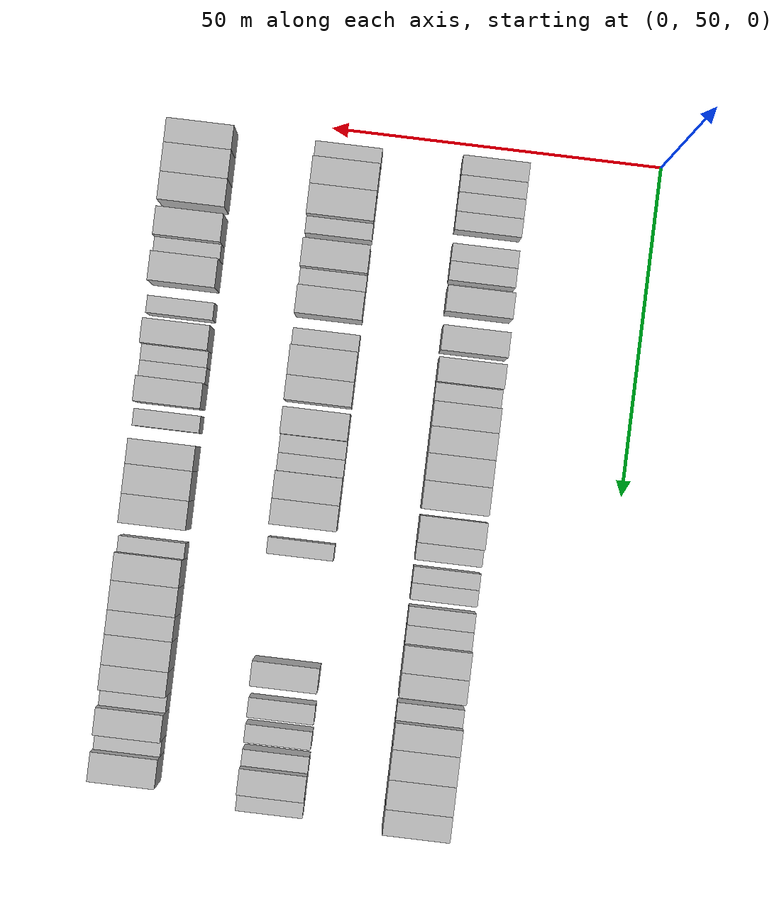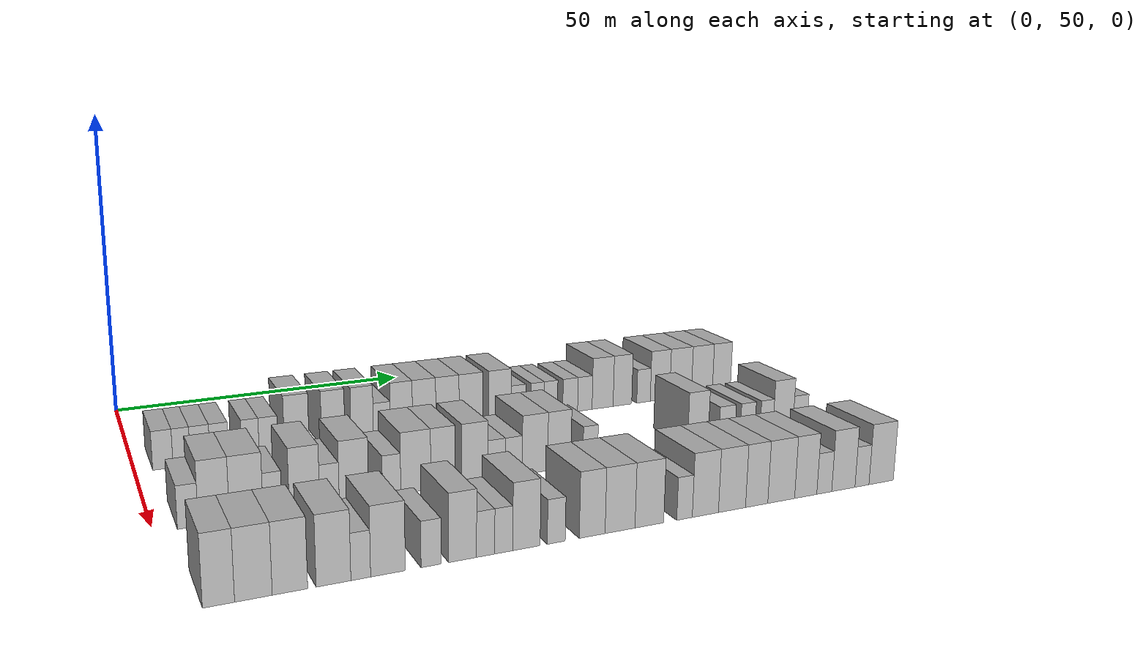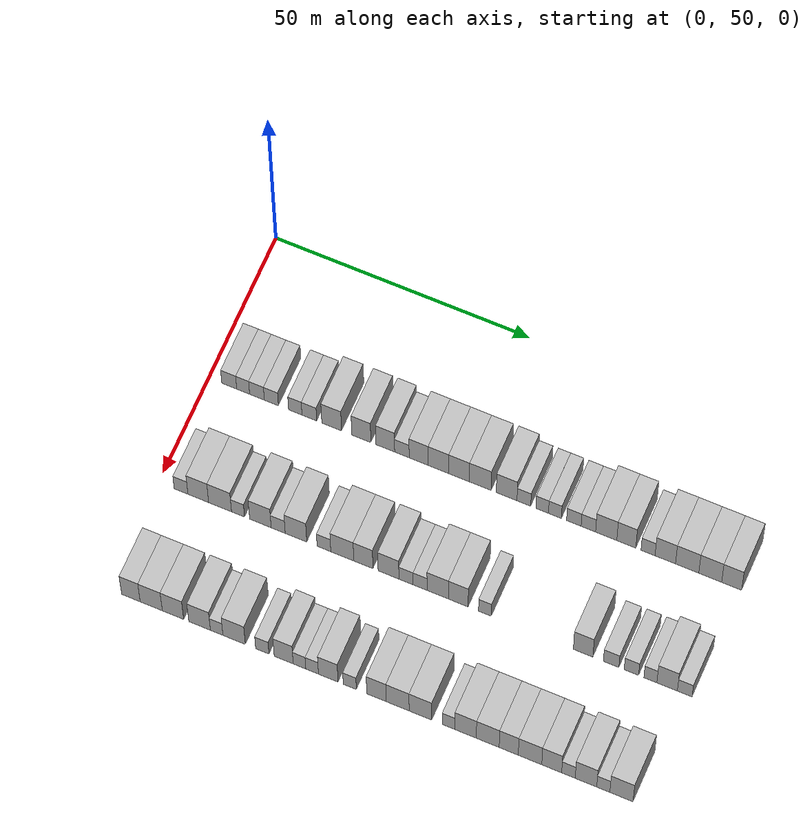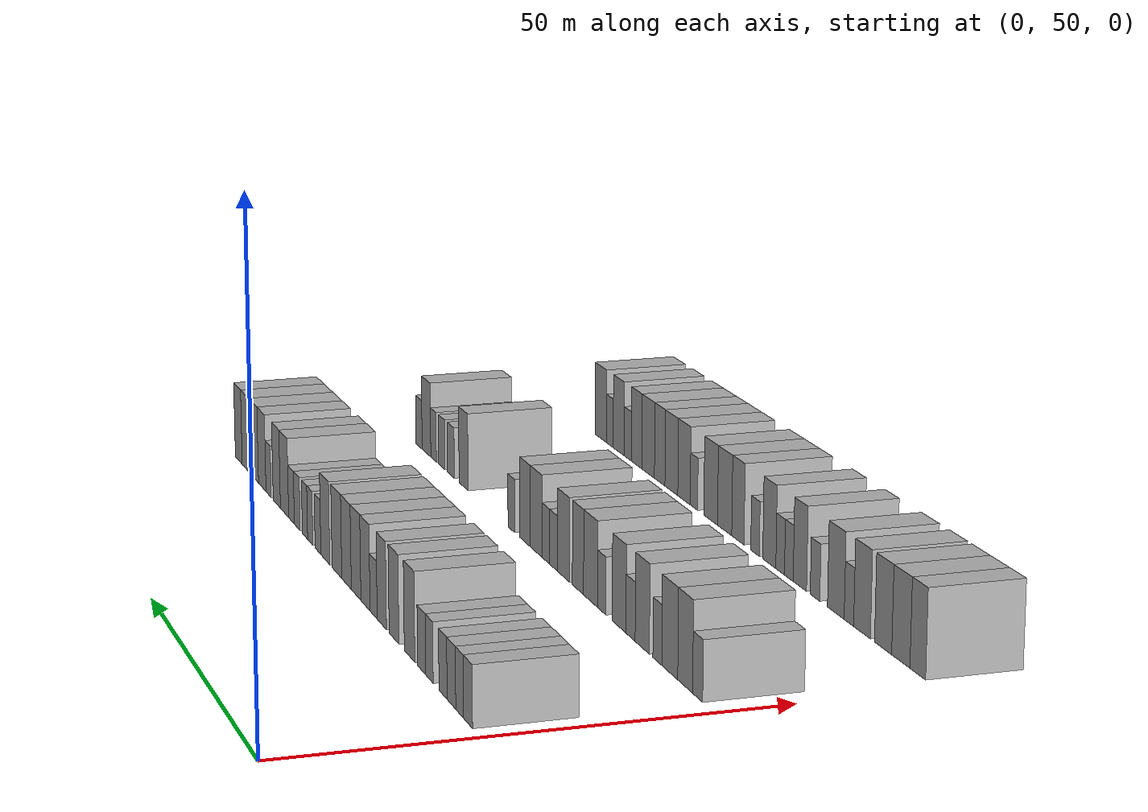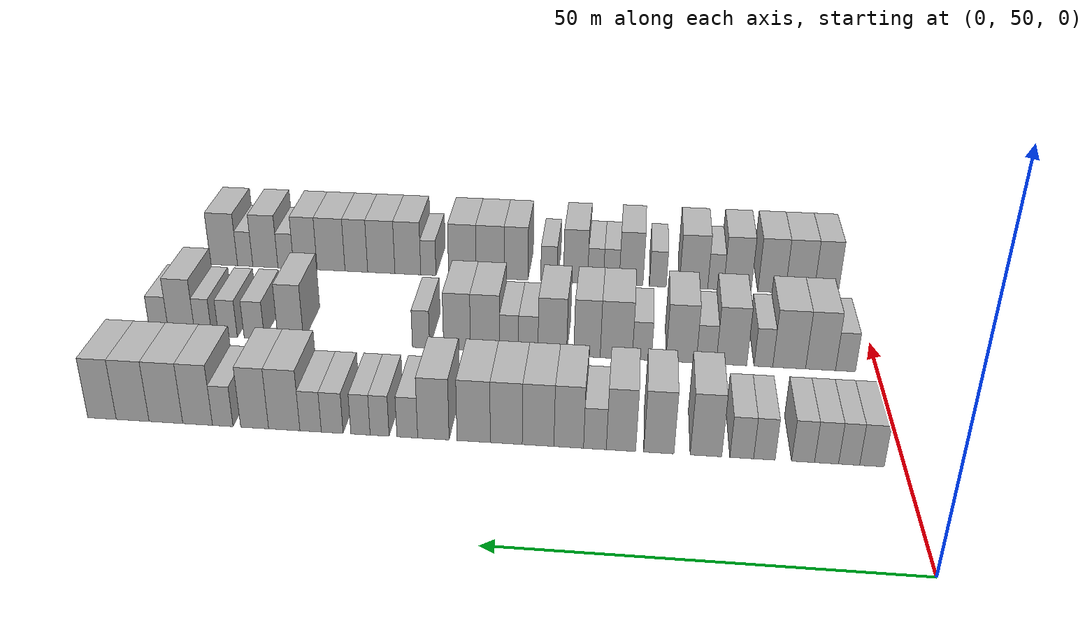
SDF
<sdf version="1.6">
 <world name="default">
  <model name="building_72">
   <static>1</static>
   <pose>25.0000 54.0068 0 0.000000 0.000000 0.000000</pose>
   <link name="link">
    <pose>0 0 3.00 0 0 0</pose>
    <collision name="collision"><geometry><box><size>10.0000 2.9437 6.0000</size></box></geometry></collision>
    <visual name="visual">
     <cast_shadows>0</cast_shadows>
     <geometry><box><size>10.0000 2.9437 6.0000</size></box></geometry>
     <material>
      <script>
       <uri>model://HANNAS_wall/materials/scripts</uri>
       <uri>model://HANNAS_wall/materials/textures</uri>
       <name>vrc/HANNAS_wall</name>
      </script>
     </material>
    </visual>
   </link>
  </model>
  <model name="building_73">
   <static>1</static>
   <pose>25.0000 56.7480 0 0.000000 0.000000 0.000000</pose>
   <link name="link">
    <pose>0 0 3.00 0 0 0</pose>
    <collision name="collision"><geometry><box><size>10.0000 2.5386 6.0000</size></box></geometry></collision>
    <visual name="visual">
     <cast_shadows>0</cast_shadows>
     <geometry><box><size>10.0000 2.5386 6.0000</size></box></geometry>
     <material>
      <script>
       <uri>model://HANNAS_wall/materials/scripts</uri>
       <uri>model://HANNAS_wall/materials/textures</uri>
       <name>vrc/HANNAS_wall</name>
      </script>
     </material>
    </visual>
   </link>
  </model>
  <model name="building_74">
   <static>1</static>
   <pose>25.0000 59.4649 0 0.000000 0.000000 0.000000</pose>
   <link name="link">
    <pose>0 0 3.00 0 0 0</pose>
    <collision name="collision"><geometry><box><size>10.0000 2.8952 6.0000</size></box></geometry></collision>
    <visual name="visual">
     <cast_shadows>0</cast_shadows>
     <geometry><box><size>10.0000 2.8952 6.0000</size></box></geometry>
     <material>
      <script>
       <uri>model://HANNAS_wall/materials/scripts</uri>
       <uri>model://HANNAS_wall/materials/textures</uri>
       <name>vrc/HANNAS_wall</name>
      </script>
     </material>
    </visual>
   </link>
  </model>
  <model name="building_75">
   <static>1</static>
   <pose>25.0000 62.2959 0 0.000000 0.000000 0.000000</pose>
   <link name="link">
    <pose>0 0 3.00 0 0 0</pose>
    <collision name="collision"><geometry><box><size>10.0000 2.7669 6.0000</size></box></geometry></collision>
    <visual name="visual">
     <cast_shadows>0</cast_shadows>
     <geometry><box><size>10.0000 2.7669 6.0000</size></box></geometry>
     <material>
      <script>
       <uri>model://HANNAS_wall/materials/scripts</uri>
       <uri>model://HANNAS_wall/materials/textures</uri>
       <name>vrc/HANNAS_wall</name>
      </script>
     </material>
    </visual>
   </link>
  </model>
  <model name="building_76">
   <static>1</static>
   <pose>25.0000 66.9899 0 0.000000 0.000000 0.000000</pose>
   <link name="link">
    <pose>0 0 3.00 0 0 0</pose>
    <collision name="collision"><geometry><box><size>10.0000 2.6211 6.0000</size></box></geometry></collision>
    <visual name="visual">
     <cast_shadows>0</cast_shadows>
     <geometry><box><size>10.0000 2.6211 6.0000</size></box></geometry>
     <material>
      <script>
       <uri>model://HANNAS_wall/materials/scripts</uri>
       <uri>model://HANNAS_wall/materials/textures</uri>
       <name>vrc/HANNAS_wall</name>
      </script>
     </material>
    </visual>
   </link>
  </model>
  <model name="building_77">
   <static>1</static>
   <pose>25.0000 69.7466 0 0.000000 0.000000 0.000000</pose>
   <link name="link">
    <pose>0 0 3.00 0 0 0</pose>
    <collision name="collision"><geometry><box><size>10.0000 2.8924 6.0000</size></box></geometry></collision>
    <visual name="visual">
     <cast_shadows>0</cast_shadows>
     <geometry><box><size>10.0000 2.8924 6.0000</size></box></geometry>
     <material>
      <script>
       <uri>model://HANNAS_wall/materials/scripts</uri>
       <uri>model://HANNAS_wall/materials/textures</uri>
       <name>vrc/HANNAS_wall</name>
      </script>
     </material>
    </visual>
   </link>
  </model>
  <model name="building_78">
   <static>1</static>
   <pose>25.0000 74.1264 0 0.000000 0.000000 0.000000</pose>
   <link name="link">
    <pose>0 0 4.50 0 0 0</pose>
    <collision name="collision"><geometry><box><size>10.0000 3.8671 9.0000</size></box></geometry></collision>
    <visual name="visual">
     <cast_shadows>0</cast_shadows>
     <geometry><box><size>10.0000 3.8671 9.0000</size></box></geometry>
     <material>
      <script>
       <uri>model://HANNAS_wall/materials/scripts</uri>
       <uri>model://HANNAS_wall/materials/textures</uri>
       <name>vrc/HANNAS_wall</name>
      </script>
     </material>
    </visual>
   </link>
  </model>
  <model name="building_79">
   <static>1</static>
   <pose>25.0000 79.9260 0 0.000000 0.000000 0.000000</pose>
   <link name="link">
    <pose>0 0 4.50 0 0 0</pose>
    <collision name="collision"><geometry><box><size>10.0000 3.7321 9.0000</size></box></geometry></collision>
    <visual name="visual">
     <cast_shadows>0</cast_shadows>
     <geometry><box><size>10.0000 3.7321 9.0000</size></box></geometry>
     <material>
      <script>
       <uri>model://HANNAS_wall/materials/scripts</uri>
       <uri>model://HANNAS_wall/materials/textures</uri>
       <name>vrc/HANNAS_wall</name>
      </script>
     </material>
    </visual>
   </link>
  </model>
  <model name="building_80">
   <static>1</static>
   <pose>25.0000 84.6136 0 0.000000 0.000000 0.000000</pose>
   <link name="link">
    <pose>0 0 4.50 0 0 0</pose>
    <collision name="collision"><geometry><box><size>10.0000 3.6432 9.0000</size></box></geometry></collision>
    <visual name="visual">
     <cast_shadows>0</cast_shadows>
     <geometry><box><size>10.0000 3.6432 9.0000</size></box></geometry>
     <material>
      <script>
       <uri>model://HANNAS_wall/materials/scripts</uri>
       <uri>model://HANNAS_wall/materials/textures</uri>
       <name>vrc/HANNAS_wall</name>
      </script>
     </material>
    </visual>
   </link>
  </model>
  <model name="building_81">
   <static>1</static>
   <pose>25.0000 87.8532 0 0.000000 0.000000 0.000000</pose>
   <link name="link">
    <pose>0 0 3.00 0 0 0</pose>
    <collision name="collision"><geometry><box><size>10.0000 2.8360 6.0000</size></box></geometry></collision>
    <visual name="visual">
     <cast_shadows>0</cast_shadows>
     <geometry><box><size>10.0000 2.8360 6.0000</size></box></geometry>
     <material>
      <script>
       <uri>model://HANNAS_wall/materials/scripts</uri>
       <uri>model://HANNAS_wall/materials/textures</uri>
       <name>vrc/HANNAS_wall</name>
      </script>
     </material>
    </visual>
   </link>
  </model>
  <model name="building_82">
   <static>1</static>
   <pose>25.0000 91.1264 0 0.000000 0.000000 0.000000</pose>
   <link name="link">
    <pose>0 0 4.50 0 0 0</pose>
    <collision name="collision"><geometry><box><size>10.0000 3.7104 9.0000</size></box></geometry></collision>
    <visual name="visual">
     <cast_shadows>0</cast_shadows>
     <geometry><box><size>10.0000 3.7104 9.0000</size></box></geometry>
     <material>
      <script>
       <uri>model://HANNAS_wall/materials/scripts</uri>
       <uri>model://HANNAS_wall/materials/textures</uri>
       <name>vrc/HANNAS_wall</name>
      </script>
     </material>
    </visual>
   </link>
  </model>
  <model name="building_83">
   <static>1</static>
   <pose>25.0000 94.9710 0 0.000000 0.000000 0.000000</pose>
   <link name="link">
    <pose>0 0 4.50 0 0 0</pose>
    <collision name="collision"><geometry><box><size>10.0000 3.9789 9.0000</size></box></geometry></collision>
    <visual name="visual">
     <cast_shadows>0</cast_shadows>
     <geometry><box><size>10.0000 3.9789 9.0000</size></box></geometry>
     <material>
      <script>
       <uri>model://HANNAS_wall/materials/scripts</uri>
       <uri>model://HANNAS_wall/materials/textures</uri>
       <name>vrc/HANNAS_wall</name>
      </script>
     </material>
    </visual>
   </link>
  </model>
  <model name="building_84">
   <static>1</static>
   <pose>25.0000 98.9792 0 0.000000 0.000000 0.000000</pose>
   <link name="link">
    <pose>0 0 4.50 0 0 0</pose>
    <collision name="collision"><geometry><box><size>10.0000 4.0376 9.0000</size></box></geometry></collision>
    <visual name="visual">
     <cast_shadows>0</cast_shadows>
     <geometry><box><size>10.0000 4.0376 9.0000</size></box></geometry>
     <material>
      <script>
       <uri>model://HANNAS_wall/materials/scripts</uri>
       <uri>model://HANNAS_wall/materials/textures</uri>
       <name>vrc/HANNAS_wall</name>
      </script>
     </material>
    </visual>
   </link>
  </model>
  <model name="building_85">
   <static>1</static>
   <pose>25.0000 103.1059 0 0.000000 0.000000 0.000000</pose>
   <link name="link">
    <pose>0 0 4.50 0 0 0</pose>
    <collision name="collision"><geometry><box><size>10.0000 4.2157 9.0000</size></box></geometry></collision>
    <visual name="visual">
     <cast_shadows>0</cast_shadows>
     <geometry><box><size>10.0000 4.2157 9.0000</size></box></geometry>
     <material>
      <script>
       <uri>model://HANNAS_wall/materials/scripts</uri>
       <uri>model://HANNAS_wall/materials/textures</uri>
       <name>vrc/HANNAS_wall</name>
      </script>
     </material>
    </visual>
   </link>
  </model>
  <model name="building_86">
   <static>1</static>
   <pose>25.0000 108.2187 0 0.000000 0.000000 0.000000</pose>
   <link name="link">
    <pose>0 0 4.50 0 0 0</pose>
    <collision name="collision"><geometry><box><size>10.0000 4.0099 9.0000</size></box></geometry></collision>
    <visual name="visual">
     <cast_shadows>0</cast_shadows>
     <geometry><box><size>10.0000 4.0099 9.0000</size></box></geometry>
     <material>
      <script>
       <uri>model://HANNAS_wall/materials/scripts</uri>
       <uri>model://HANNAS_wall/materials/textures</uri>
       <name>vrc/HANNAS_wall</name>
      </script>
     </material>
    </visual>
   </link>
  </model>
  <model name="building_87">
   <static>1</static>
   <pose>25.0000 111.5525 0 0.000000 0.000000 0.000000</pose>
   <link name="link">
    <pose>0 0 3.00 0 0 0</pose>
    <collision name="collision"><geometry><box><size>10.0000 2.6577 6.0000</size></box></geometry></collision>
    <visual name="visual">
     <cast_shadows>0</cast_shadows>
     <geometry><box><size>10.0000 2.6577 6.0000</size></box></geometry>
     <material>
      <script>
       <uri>model://HANNAS_wall/materials/scripts</uri>
       <uri>model://HANNAS_wall/materials/textures</uri>
       <name>vrc/HANNAS_wall</name>
      </script>
     </material>
    </visual>
   </link>
  </model>
  <model name="building_88">
   <static>1</static>
   <pose>25.0000 115.1015 0 0.000000 0.000000 0.000000</pose>
   <link name="link">
    <pose>0 0 3.00 0 0 0</pose>
    <collision name="collision"><geometry><box><size>10.0000 2.4403 6.0000</size></box></geometry></collision>
    <visual name="visual">
     <cast_shadows>0</cast_shadows>
     <geometry><box><size>10.0000 2.4403 6.0000</size></box></geometry>
     <material>
      <script>
       <uri>model://HANNAS_wall/materials/scripts</uri>
       <uri>model://HANNAS_wall/materials/textures</uri>
       <name>vrc/HANNAS_wall</name>
      </script>
     </material>
    </visual>
   </link>
  </model>
  <model name="building_89">
   <static>1</static>
   <pose>25.0000 117.5666 0 0.000000 0.000000 0.000000</pose>
   <link name="link">
    <pose>0 0 3.00 0 0 0</pose>
    <collision name="collision"><geometry><box><size>10.0000 2.4898 6.0000</size></box></geometry></collision>
    <visual name="visual">
     <cast_shadows>0</cast_shadows>
     <geometry><box><size>10.0000 2.4898 6.0000</size></box></geometry>
     <material>
      <script>
       <uri>model://HANNAS_wall/materials/scripts</uri>
       <uri>model://HANNAS_wall/materials/textures</uri>
       <name>vrc/HANNAS_wall</name>
      </script>
     </material>
    </visual>
   </link>
  </model>
  <model name="building_90">
   <static>1</static>
   <pose>25.0000 121.2212 0 0.000000 0.000000 0.000000</pose>
   <link name="link">
    <pose>0 0 3.00 0 0 0</pose>
    <collision name="collision"><geometry><box><size>10.0000 2.8195 6.0000</size></box></geometry></collision>
    <visual name="visual">
     <cast_shadows>0</cast_shadows>
     <geometry><box><size>10.0000 2.8195 6.0000</size></box></geometry>
     <material>
      <script>
       <uri>model://HANNAS_wall/materials/scripts</uri>
       <uri>model://HANNAS_wall/materials/textures</uri>
       <name>vrc/HANNAS_wall</name>
      </script>
     </material>
    </visual>
   </link>
  </model>
  <model name="building_91">
   <static>1</static>
   <pose>25.0000 124.0213 0 0.000000 0.000000 0.000000</pose>
   <link name="link">
    <pose>0 0 3.00 0 0 0</pose>
    <collision name="collision"><geometry><box><size>10.0000 2.7807 6.0000</size></box></geometry></collision>
    <visual name="visual">
     <cast_shadows>0</cast_shadows>
     <geometry><box><size>10.0000 2.7807 6.0000</size></box></geometry>
     <material>
      <script>
       <uri>model://HANNAS_wall/materials/scripts</uri>
       <uri>model://HANNAS_wall/materials/textures</uri>
       <name>vrc/HANNAS_wall</name>
      </script>
     </material>
    </visual>
   </link>
  </model>
  <model name="building_92">
   <static>1</static>
   <pose>25.0000 127.4545 0 0.000000 0.000000 0.000000</pose>
   <link name="link">
    <pose>0 0 4.50 0 0 0</pose>
    <collision name="collision"><geometry><box><size>10.0000 4.0857 9.0000</size></box></geometry></collision>
    <visual name="visual">
     <cast_shadows>0</cast_shadows>
     <geometry><box><size>10.0000 4.0857 9.0000</size></box></geometry>
     <material>
      <script>
       <uri>model://HANNAS_wall/materials/scripts</uri>
       <uri>model://HANNAS_wall/materials/textures</uri>
       <name>vrc/HANNAS_wall</name>
      </script>
     </material>
    </visual>
   </link>
  </model>
  <model name="building_93">
   <static>1</static>
   <pose>25.0000 131.3261 0 0.000000 0.000000 0.000000</pose>
   <link name="link">
    <pose>0 0 4.50 0 0 0</pose>
    <collision name="collision"><geometry><box><size>10.0000 3.6574 9.0000</size></box></geometry></collision>
    <visual name="visual">
     <cast_shadows>0</cast_shadows>
     <geometry><box><size>10.0000 3.6574 9.0000</size></box></geometry>
     <material>
      <script>
       <uri>model://HANNAS_wall/materials/scripts</uri>
       <uri>model://HANNAS_wall/materials/textures</uri>
       <name>vrc/HANNAS_wall</name>
      </script>
     </material>
    </visual>
   </link>
  </model>
  <model name="building_94">
   <static>1</static>
   <pose>25.0000 135.5057 0 0.000000 0.000000 0.000000</pose>
   <link name="link">
    <pose>0 0 3.00 0 0 0</pose>
    <collision name="collision"><geometry><box><size>10.0000 2.7018 6.0000</size></box></geometry></collision>
    <visual name="visual">
     <cast_shadows>0</cast_shadows>
     <geometry><box><size>10.0000 2.7018 6.0000</size></box></geometry>
     <material>
      <script>
       <uri>model://HANNAS_wall/materials/scripts</uri>
       <uri>model://HANNAS_wall/materials/textures</uri>
       <name>vrc/HANNAS_wall</name>
      </script>
     </material>
    </visual>
   </link>
  </model>
  <model name="building_95">
   <static>1</static>
   <pose>25.0000 138.8215 0 0.000000 0.000000 0.000000</pose>
   <link name="link">
    <pose>0 0 4.50 0 0 0</pose>
    <collision name="collision"><geometry><box><size>10.0000 3.9300 9.0000</size></box></geometry></collision>
    <visual name="visual">
     <cast_shadows>0</cast_shadows>
     <geometry><box><size>10.0000 3.9300 9.0000</size></box></geometry>
     <material>
      <script>
       <uri>model://HANNAS_wall/materials/scripts</uri>
       <uri>model://HANNAS_wall/materials/textures</uri>
       <name>vrc/HANNAS_wall</name>
      </script>
     </material>
    </visual>
   </link>
  </model>
  <model name="building_96">
   <static>1</static>
   <pose>25.0000 143.0218 0 0.000000 0.000000 0.000000</pose>
   <link name="link">
    <pose>0 0 4.50 0 0 0</pose>
    <collision name="collision"><geometry><box><size>10.0000 4.4706 9.0000</size></box></geometry></collision>
    <visual name="visual">
     <cast_shadows>0</cast_shadows>
     <geometry><box><size>10.0000 4.4706 9.0000</size></box></geometry>
     <material>
      <script>
       <uri>model://HANNAS_wall/materials/scripts</uri>
       <uri>model://HANNAS_wall/materials/textures</uri>
       <name>vrc/HANNAS_wall</name>
      </script>
     </material>
    </visual>
   </link>
  </model>
  <model name="building_97">
   <static>1</static>
   <pose>25.0000 147.4467 0 0.000000 0.000000 0.000000</pose>
   <link name="link">
    <pose>0 0 4.50 0 0 0</pose>
    <collision name="collision"><geometry><box><size>10.0000 4.3793 9.0000</size></box></geometry></collision>
    <visual name="visual">
     <cast_shadows>0</cast_shadows>
     <geometry><box><size>10.0000 4.3793 9.0000</size></box></geometry>
     <material>
      <script>
       <uri>model://HANNAS_wall/materials/scripts</uri>
       <uri>model://HANNAS_wall/materials/textures</uri>
       <name>vrc/HANNAS_wall</name>
      </script>
     </material>
    </visual>
   </link>
  </model>
  <model name="building_98">
   <static>1</static>
   <pose>25.0000 151.5432 0 0.000000 0.000000 0.000000</pose>
   <link name="link">
    <pose>0 0 4.50 0 0 0</pose>
    <collision name="collision"><geometry><box><size>10.0000 3.8136 9.0000</size></box></geometry></collision>
    <visual name="visual">
     <cast_shadows>0</cast_shadows>
     <geometry><box><size>10.0000 3.8136 9.0000</size></box></geometry>
     <material>
      <script>
       <uri>model://HANNAS_wall/materials/scripts</uri>
       <uri>model://HANNAS_wall/materials/textures</uri>
       <name>vrc/HANNAS_wall</name>
      </script>
     </material>
    </visual>
   </link>
  </model>
  <model name="building_197">
   <static>1</static>
   <pose>47.0000 54.4114 0 0.000000 0.000000 0.000000</pose>
   <link name="link">
    <pose>0 0 3.00 0 0 0</pose>
    <collision name="collision"><geometry><box><size>10.0000 2.6875 6.0000</size></box></geometry></collision>
    <visual name="visual">
     <cast_shadows>0</cast_shadows>
     <geometry><box><size>10.0000 2.6875 6.0000</size></box></geometry>
     <material>
      <script>
       <uri>model://HANNAS_wall/materials/scripts</uri>
       <uri>model://HANNAS_wall/materials/textures</uri>
       <name>vrc/HANNAS_wall</name>
      </script>
     </material>
    </visual>
   </link>
  </model>
  <model name="building_198">
   <static>1</static>
   <pose>47.0000 57.7791 0 0.000000 0.000000 0.000000</pose>
   <link name="link">
    <pose>0 0 4.50 0 0 0</pose>
    <collision name="collision"><geometry><box><size>10.0000 4.0480 9.0000</size></box></geometry></collision>
    <visual name="visual">
     <cast_shadows>0</cast_shadows>
     <geometry><box><size>10.0000 4.0480 9.0000</size></box></geometry>
     <material>
      <script>
       <uri>model://HANNAS_wall/materials/scripts</uri>
       <uri>model://HANNAS_wall/materials/textures</uri>
       <name>vrc/HANNAS_wall</name>
      </script>
     </material>
    </visual>
   </link>
  </model>
  <model name="building_199">
   <static>1</static>
   <pose>47.0000 62.0350 0 0.000000 0.000000 0.000000</pose>
   <link name="link">
    <pose>0 0 4.50 0 0 0</pose>
    <collision name="collision"><geometry><box><size>10.0000 4.4637 9.0000</size></box></geometry></collision>
    <visual name="visual">
     <cast_shadows>0</cast_shadows>
     <geometry><box><size>10.0000 4.4637 9.0000</size></box></geometry>
     <material>
      <script>
       <uri>model://HANNAS_wall/materials/scripts</uri>
       <uri>model://HANNAS_wall/materials/textures</uri>
       <name>vrc/HANNAS_wall</name>
      </script>
     </material>
    </visual>
   </link>
  </model>
  <model name="building_200">
   <static>1</static>
   <pose>47.0000 65.5377 0 0.000000 0.000000 0.000000</pose>
   <link name="link">
    <pose>0 0 3.00 0 0 0</pose>
    <collision name="collision"><geometry><box><size>10.0000 2.5417 6.0000</size></box></geometry></collision>
    <visual name="visual">
     <cast_shadows>0</cast_shadows>
     <geometry><box><size>10.0000 2.5417 6.0000</size></box></geometry>
     <material>
      <script>
       <uri>model://HANNAS_wall/materials/scripts</uri>
       <uri>model://HANNAS_wall/materials/textures</uri>
       <name>vrc/HANNAS_wall</name>
      </script>
     </material>
    </visual>
   </link>
  </model>
  <model name="building_201">
   <static>1</static>
   <pose>47.0000 69.9018 0 0.000000 0.000000 0.000000</pose>
   <link name="link">
    <pose>0 0 4.50 0 0 0</pose>
    <collision name="collision"><geometry><box><size>10.0000 4.1866 9.0000</size></box></geometry></collision>
    <visual name="visual">
     <cast_shadows>0</cast_shadows>
     <geometry><box><size>10.0000 4.1866 9.0000</size></box></geometry>
     <material>
      <script>
       <uri>model://HANNAS_wall/materials/scripts</uri>
       <uri>model://HANNAS_wall/materials/textures</uri>
       <name>vrc/HANNAS_wall</name>
      </script>
     </material>
    </visual>
   </link>
  </model>
  <model name="building_202">
   <static>1</static>
   <pose>47.0000 73.3620 0 0.000000 0.000000 0.000000</pose>
   <link name="link">
    <pose>0 0 3.00 0 0 0</pose>
    <collision name="collision"><geometry><box><size>10.0000 2.7338 6.0000</size></box></geometry></collision>
    <visual name="visual">
     <cast_shadows>0</cast_shadows>
     <geometry><box><size>10.0000 2.7338 6.0000</size></box></geometry>
     <material>
      <script>
       <uri>model://HANNAS_wall/materials/scripts</uri>
       <uri>model://HANNAS_wall/materials/textures</uri>
       <name>vrc/HANNAS_wall</name>
      </script>
     </material>
    </visual>
   </link>
  </model>
  <model name="building_203">
   <static>1</static>
   <pose>47.0000 76.8242 0 0.000000 0.000000 0.000000</pose>
   <link name="link">
    <pose>0 0 4.50 0 0 0</pose>
    <collision name="collision"><geometry><box><size>10.0000 4.1905 9.0000</size></box></geometry></collision>
    <visual name="visual">
     <cast_shadows>0</cast_shadows>
     <geometry><box><size>10.0000 4.1905 9.0000</size></box></geometry>
     <material>
      <script>
       <uri>model://HANNAS_wall/materials/scripts</uri>
       <uri>model://HANNAS_wall/materials/textures</uri>
       <name>vrc/HANNAS_wall</name>
      </script>
     </material>
    </visual>
   </link>
  </model>
  <model name="building_204">
   <static>1</static>
   <pose>47.0000 82.2529 0 0.000000 0.000000 0.000000</pose>
   <link name="link">
    <pose>0 0 3.00 0 0 0</pose>
    <collision name="collision"><geometry><box><size>10.0000 2.6669 6.0000</size></box></geometry></collision>
    <visual name="visual">
     <cast_shadows>0</cast_shadows>
     <geometry><box><size>10.0000 2.6669 6.0000</size></box></geometry>
     <material>
      <script>
       <uri>model://HANNAS_wall/materials/scripts</uri>
       <uri>model://HANNAS_wall/materials/textures</uri>
       <name>vrc/HANNAS_wall</name>
      </script>
     </material>
    </visual>
   </link>
  </model>
  <model name="building_205">
   <static>1</static>
   <pose>47.0000 85.8175 0 0.000000 0.000000 0.000000</pose>
   <link name="link">
    <pose>0 0 4.50 0 0 0</pose>
    <collision name="collision"><geometry><box><size>10.0000 4.4623 9.0000</size></box></geometry></collision>
    <visual name="visual">
     <cast_shadows>0</cast_shadows>
     <geometry><box><size>10.0000 4.4623 9.0000</size></box></geometry>
     <material>
      <script>
       <uri>model://HANNAS_wall/materials/scripts</uri>
       <uri>model://HANNAS_wall/materials/textures</uri>
       <name>vrc/HANNAS_wall</name>
      </script>
     </material>
    </visual>
   </link>
  </model>
  <model name="building_206">
   <static>1</static>
   <pose>47.0000 89.9012 0 0.000000 0.000000 0.000000</pose>
   <link name="link">
    <pose>0 0 4.50 0 0 0</pose>
    <collision name="collision"><geometry><box><size>10.0000 3.7052 9.0000</size></box></geometry></collision>
    <visual name="visual">
     <cast_shadows>0</cast_shadows>
     <geometry><box><size>10.0000 3.7052 9.0000</size></box></geometry>
     <material>
      <script>
       <uri>model://HANNAS_wall/materials/scripts</uri>
       <uri>model://HANNAS_wall/materials/textures</uri>
       <name>vrc/HANNAS_wall</name>
      </script>
     </material>
    </visual>
   </link>
  </model>
  <model name="building_207">
   <static>1</static>
   <pose>47.0000 94.7678 0 0.000000 0.000000 0.000000</pose>
   <link name="link">
    <pose>0 0 4.50 0 0 0</pose>
    <collision name="collision"><geometry><box><size>10.0000 4.0279 9.0000</size></box></geometry></collision>
    <visual name="visual">
     <cast_shadows>0</cast_shadows>
     <geometry><box><size>10.0000 4.0279 9.0000</size></box></geometry>
     <material>
      <script>
       <uri>model://HANNAS_wall/materials/scripts</uri>
       <uri>model://HANNAS_wall/materials/textures</uri>
       <name>vrc/HANNAS_wall</name>
      </script>
     </material>
    </visual>
   </link>
  </model>
  <model name="building_208">
   <static>1</static>
   <pose>47.0000 98.1553 0 0.000000 0.000000 0.000000</pose>
   <link name="link">
    <pose>0 0 3.00 0 0 0</pose>
    <collision name="collision"><geometry><box><size>10.0000 2.7473 6.0000</size></box></geometry></collision>
    <visual name="visual">
     <cast_shadows>0</cast_shadows>
     <geometry><box><size>10.0000 2.7473 6.0000</size></box></geometry>
     <material>
      <script>
       <uri>model://HANNAS_wall/materials/scripts</uri>
       <uri>model://HANNAS_wall/materials/textures</uri>
       <name>vrc/HANNAS_wall</name>
      </script>
     </material>
    </visual>
   </link>
  </model>
  <model name="building_209">
   <static>1</static>
   <pose>47.0000 100.8725 0 0.000000 0.000000 0.000000</pose>
   <link name="link">
    <pose>0 0 3.00 0 0 0</pose>
    <collision name="collision"><geometry><box><size>10.0000 2.6871 6.0000</size></box></geometry></collision>
    <visual name="visual">
     <cast_shadows>0</cast_shadows>
     <geometry><box><size>10.0000 2.6871 6.0000</size></box></geometry>
     <material>
      <script>
       <uri>model://HANNAS_wall/materials/scripts</uri>
       <uri>model://HANNAS_wall/materials/textures</uri>
       <name>vrc/HANNAS_wall</name>
      </script>
     </material>
    </visual>
   </link>
  </model>
  <model name="building_210">
   <static>1</static>
   <pose>47.0000 104.2698 0 0.000000 0.000000 0.000000</pose>
   <link name="link">
    <pose>0 0 4.50 0 0 0</pose>
    <collision name="collision"><geometry><box><size>10.0000 4.1074 9.0000</size></box></geometry></collision>
    <visual name="visual">
     <cast_shadows>0</cast_shadows>
     <geometry><box><size>10.0000 4.1074 9.0000</size></box></geometry>
     <material>
      <script>
       <uri>model://HANNAS_wall/materials/scripts</uri>
       <uri>model://HANNAS_wall/materials/textures</uri>
       <name>vrc/HANNAS_wall</name>
      </script>
     </material>
    </visual>
   </link>
  </model>
  <model name="building_211">
   <static>1</static>
   <pose>47.0000 108.2288 0 0.000000 0.000000 0.000000</pose>
   <link name="link">
    <pose>0 0 4.50 0 0 0</pose>
    <collision name="collision"><geometry><box><size>10.0000 3.8106 9.0000</size></box></geometry></collision>
    <visual name="visual">
     <cast_shadows>0</cast_shadows>
     <geometry><box><size>10.0000 3.8106 9.0000</size></box></geometry>
     <material>
      <script>
       <uri>model://HANNAS_wall/materials/scripts</uri>
       <uri>model://HANNAS_wall/materials/textures</uri>
       <name>vrc/HANNAS_wall</name>
      </script>
     </material>
    </visual>
   </link>
  </model>
  <model name="building_212">
   <static>1</static>
   <pose>47.0000 113.3647 0 0.000000 0.000000 0.000000</pose>
   <link name="link">
    <pose>0 0 3.00 0 0 0</pose>
    <collision name="collision"><geometry><box><size>10.0000 2.4612 6.0000</size></box></geometry></collision>
    <visual name="visual">
     <cast_shadows>0</cast_shadows>
     <geometry><box><size>10.0000 2.4612 6.0000</size></box></geometry>
     <material>
      <script>
       <uri>model://HANNAS_wall/materials/scripts</uri>
       <uri>model://HANNAS_wall/materials/textures</uri>
       <name>vrc/HANNAS_wall</name>
      </script>
     </material>
    </visual>
   </link>
  </model>
  <model name="building_213">
   <static>1</static>
   <pose>47.0000 132.1962 0 0.000000 0.000000 0.000000</pose>
   <link name="link">
    <pose>0 0 4.50 0 0 0</pose>
    <collision name="collision"><geometry><box><size>10.0000 3.7339 9.0000</size></box></geometry></collision>
    <visual name="visual">
     <cast_shadows>0</cast_shadows>
     <geometry><box><size>10.0000 3.7339 9.0000</size></box></geometry>
     <material>
      <script>
       <uri>model://HANNAS_wall/materials/scripts</uri>
       <uri>model://HANNAS_wall/materials/textures</uri>
       <name>vrc/HANNAS_wall</name>
      </script>
     </material>
    </visual>
   </link>
  </model>
  <model name="building_214">
   <static>1</static>
   <pose>47.0000 137.5461 0 0.000000 0.000000 0.000000</pose>
   <link name="link">
    <pose>0 0 3.00 0 0 0</pose>
    <collision name="collision"><geometry><box><size>10.0000 2.9659 6.0000</size></box></geometry></collision>
    <visual name="visual">
     <cast_shadows>0</cast_shadows>
     <geometry><box><size>10.0000 2.9659 6.0000</size></box></geometry>
     <material>
      <script>
       <uri>model://HANNAS_wall/materials/scripts</uri>
       <uri>model://HANNAS_wall/materials/textures</uri>
       <name>vrc/HANNAS_wall</name>
      </script>
     </material>
    </visual>
   </link>
  </model>
  <model name="building_215">
   <static>1</static>
   <pose>47.0000 141.4081 0 0.000000 0.000000 0.000000</pose>
   <link name="link">
    <pose>0 0 3.00 0 0 0</pose>
    <collision name="collision"><geometry><box><size>10.0000 2.7582 6.0000</size></box></geometry></collision>
    <visual name="visual">
     <cast_shadows>0</cast_shadows>
     <geometry><box><size>10.0000 2.7582 6.0000</size></box></geometry>
     <material>
      <script>
       <uri>model://HANNAS_wall/materials/scripts</uri>
       <uri>model://HANNAS_wall/materials/textures</uri>
       <name>vrc/HANNAS_wall</name>
      </script>
     </material>
    </visual>
   </link>
  </model>
  <model name="building_216">
   <static>1</static>
   <pose>47.0000 145.0253 0 0.000000 0.000000 0.000000</pose>
   <link name="link">
    <pose>0 0 3.00 0 0 0</pose>
    <collision name="collision"><geometry><box><size>10.0000 2.4761 6.0000</size></box></geometry></collision>
    <visual name="visual">
     <cast_shadows>0</cast_shadows>
     <geometry><box><size>10.0000 2.4761 6.0000</size></box></geometry>
     <material>
      <script>
       <uri>model://HANNAS_wall/materials/scripts</uri>
       <uri>model://HANNAS_wall/materials/textures</uri>
       <name>vrc/HANNAS_wall</name>
      </script>
     </material>
    </visual>
   </link>
  </model>
  <model name="building_217">
   <static>1</static>
   <pose>47.0000 148.2113 0 0.000000 0.000000 0.000000</pose>
   <link name="link">
    <pose>0 0 4.50 0 0 0</pose>
    <collision name="collision"><geometry><box><size>10.0000 3.8959 9.0000</size></box></geometry></collision>
    <visual name="visual">
     <cast_shadows>0</cast_shadows>
     <geometry><box><size>10.0000 3.8959 9.0000</size></box></geometry>
     <material>
      <script>
       <uri>model://HANNAS_wall/materials/scripts</uri>
       <uri>model://HANNAS_wall/materials/textures</uri>
       <name>vrc/HANNAS_wall</name>
      </script>
     </material>
    </visual>
   </link>
  </model>
  <model name="building_218">
   <static>1</static>
   <pose>47.0000 151.5589 0 0.000000 0.000000 0.000000</pose>
   <link name="link">
    <pose>0 0 3.00 0 0 0</pose>
    <collision name="collision"><geometry><box><size>10.0000 2.7993 6.0000</size></box></geometry></collision>
    <visual name="visual">
     <cast_shadows>0</cast_shadows>
     <geometry><box><size>10.0000 2.7993 6.0000</size></box></geometry>
     <material>
      <script>
       <uri>model://HANNAS_wall/materials/scripts</uri>
       <uri>model://HANNAS_wall/materials/textures</uri>
       <name>vrc/HANNAS_wall</name>
      </script>
     </material>
    </visual>
   </link>
  </model>
  <model name="building_321">
   <static>1</static>
   <pose>69.0000 54.5720 0 0.000000 0.000000 0.000000</pose>
   <link name="link">
    <pose>0 0 4.50 0 0 0</pose>
    <collision name="collision"><geometry><box><size>10.0000 3.6033 9.0000</size></box></geometry></collision>
    <visual name="visual">
     <cast_shadows>0</cast_shadows>
     <geometry><box><size>10.0000 3.6033 9.0000</size></box></geometry>
     <material>
      <script>
       <uri>model://HANNAS_wall/materials/scripts</uri>
       <uri>model://HANNAS_wall/materials/textures</uri>
       <name>vrc/HANNAS_wall</name>
      </script>
     </material>
    </visual>
   </link>
  </model>
  <model name="building_322">
   <static>1</static>
   <pose>69.0000 58.5234 0 0.000000 0.000000 0.000000</pose>
   <link name="link">
    <pose>0 0 4.50 0 0 0</pose>
    <collision name="collision"><geometry><box><size>10.0000 4.2995 9.0000</size></box></geometry></collision>
    <visual name="visual">
     <cast_shadows>0</cast_shadows>
     <geometry><box><size>10.0000 4.2995 9.0000</size></box></geometry>
     <material>
      <script>
       <uri>model://HANNAS_wall/materials/scripts</uri>
       <uri>model://HANNAS_wall/materials/textures</uri>
       <name>vrc/HANNAS_wall</name>
      </script>
     </material>
    </visual>
   </link>
  </model>
  <model name="building_323">
   <static>1</static>
   <pose>69.0000 62.7434 0 0.000000 0.000000 0.000000</pose>
   <link name="link">
    <pose>0 0 4.50 0 0 0</pose>
    <collision name="collision"><geometry><box><size>10.0000 4.1406 9.0000</size></box></geometry></collision>
    <visual name="visual">
     <cast_shadows>0</cast_shadows>
     <geometry><box><size>10.0000 4.1406 9.0000</size></box></geometry>
     <material>
      <script>
       <uri>model://HANNAS_wall/materials/scripts</uri>
       <uri>model://HANNAS_wall/materials/textures</uri>
       <name>vrc/HANNAS_wall</name>
      </script>
     </material>
    </visual>
   </link>
  </model>
  <model name="building_324">
   <static>1</static>
   <pose>69.0000 67.9056 0 0.000000 0.000000 0.000000</pose>
   <link name="link">
    <pose>0 0 4.50 0 0 0</pose>
    <collision name="collision"><geometry><box><size>10.0000 4.1839 9.0000</size></box></geometry></collision>
    <visual name="visual">
     <cast_shadows>0</cast_shadows>
     <geometry><box><size>10.0000 4.1839 9.0000</size></box></geometry>
     <material>
      <script>
       <uri>model://HANNAS_wall/materials/scripts</uri>
       <uri>model://HANNAS_wall/materials/textures</uri>
       <name>vrc/HANNAS_wall</name>
      </script>
     </material>
    </visual>
   </link>
  </model>
  <model name="building_325">
   <static>1</static>
   <pose>69.0000 71.2068 0 0.000000 0.000000 0.000000</pose>
   <link name="link">
    <pose>0 0 3.00 0 0 0</pose>
    <collision name="collision"><geometry><box><size>10.0000 2.4183 6.0000</size></box></geometry></collision>
    <visual name="visual">
     <cast_shadows>0</cast_shadows>
     <geometry><box><size>10.0000 2.4183 6.0000</size></box></geometry>
     <material>
      <script>
       <uri>model://HANNAS_wall/materials/scripts</uri>
       <uri>model://HANNAS_wall/materials/textures</uri>
       <name>vrc/HANNAS_wall</name>
      </script>
     </material>
    </visual>
   </link>
  </model>
  <model name="building_326">
   <static>1</static>
   <pose>69.0000 74.5813 0 0.000000 0.000000 0.000000</pose>
   <link name="link">
    <pose>0 0 4.50 0 0 0</pose>
    <collision name="collision"><geometry><box><size>10.0000 4.3308 9.0000</size></box></geometry></collision>
    <visual name="visual">
     <cast_shadows>0</cast_shadows>
     <geometry><box><size>10.0000 4.3308 9.0000</size></box></geometry>
     <material>
      <script>
       <uri>model://HANNAS_wall/materials/scripts</uri>
       <uri>model://HANNAS_wall/materials/textures</uri>
       <name>vrc/HANNAS_wall</name>
      </script>
     </material>
    </visual>
   </link>
  </model>
  <model name="building_327">
   <static>1</static>
   <pose>69.0000 80.0317 0 0.000000 0.000000 0.000000</pose>
   <link name="link">
    <pose>0 0 3.00 0 0 0</pose>
    <collision name="collision"><geometry><box><size>10.0000 2.5699 6.0000</size></box></geometry></collision>
    <visual name="visual">
     <cast_shadows>0</cast_shadows>
     <geometry><box><size>10.0000 2.5699 6.0000</size></box></geometry>
     <material>
      <script>
       <uri>model://HANNAS_wall/materials/scripts</uri>
       <uri>model://HANNAS_wall/materials/textures</uri>
       <name>vrc/HANNAS_wall</name>
      </script>
     </material>
    </visual>
   </link>
  </model>
  <model name="building_328">
   <static>1</static>
   <pose>69.0000 84.1475 0 0.000000 0.000000 0.000000</pose>
   <link name="link">
    <pose>0 0 4.50 0 0 0</pose>
    <collision name="collision"><geometry><box><size>10.0000 3.6617 9.0000</size></box></geometry></collision>
    <visual name="visual">
     <cast_shadows>0</cast_shadows>
     <geometry><box><size>10.0000 3.6617 9.0000</size></box></geometry>
     <material>
      <script>
       <uri>model://HANNAS_wall/materials/scripts</uri>
       <uri>model://HANNAS_wall/materials/textures</uri>
       <name>vrc/HANNAS_wall</name>
      </script>
     </material>
    </visual>
   </link>
  </model>
  <model name="building_329">
   <static>1</static>
   <pose>69.0000 87.1918 0 0.000000 0.000000 0.000000</pose>
   <link name="link">
    <pose>0 0 3.00 0 0 0</pose>
    <collision name="collision"><geometry><box><size>10.0000 2.4269 6.0000</size></box></geometry></collision>
    <visual name="visual">
     <cast_shadows>0</cast_shadows>
     <geometry><box><size>10.0000 2.4269 6.0000</size></box></geometry>
     <material>
      <script>
       <uri>model://HANNAS_wall/materials/scripts</uri>
       <uri>model://HANNAS_wall/materials/textures</uri>
       <name>vrc/HANNAS_wall</name>
      </script>
     </material>
    </visual>
   </link>
  </model>
  <model name="building_330">
   <static>1</static>
   <pose>69.0000 89.6252 0 0.000000 0.000000 0.000000</pose>
   <link name="link">
    <pose>0 0 3.00 0 0 0</pose>
    <collision name="collision"><geometry><box><size>10.0000 2.4401 6.0000</size></box></geometry></collision>
    <visual name="visual">
     <cast_shadows>0</cast_shadows>
     <geometry><box><size>10.0000 2.4401 6.0000</size></box></geometry>
     <material>
      <script>
       <uri>model://HANNAS_wall/materials/scripts</uri>
       <uri>model://HANNAS_wall/materials/textures</uri>
       <name>vrc/HANNAS_wall</name>
      </script>
     </material>
    </visual>
   </link>
  </model>
  <model name="building_331">
   <static>1</static>
   <pose>69.0000 92.7248 0 0.000000 0.000000 0.000000</pose>
   <link name="link">
    <pose>0 0 4.50 0 0 0</pose>
    <collision name="collision"><geometry><box><size>10.0000 3.7591 9.0000</size></box></geometry></collision>
    <visual name="visual">
     <cast_shadows>0</cast_shadows>
     <geometry><box><size>10.0000 3.7591 9.0000</size></box></geometry>
     <material>
      <script>
       <uri>model://HANNAS_wall/materials/scripts</uri>
       <uri>model://HANNAS_wall/materials/textures</uri>
       <name>vrc/HANNAS_wall</name>
      </script>
     </material>
    </visual>
   </link>
  </model>
  <model name="building_332">
   <static>1</static>
   <pose>69.0000 96.8645 0 0.000000 0.000000 0.000000</pose>
   <link name="link">
    <pose>0 0 3.00 0 0 0</pose>
    <collision name="collision"><geometry><box><size>10.0000 2.5203 6.0000</size></box></geometry></collision>
    <visual name="visual">
     <cast_shadows>0</cast_shadows>
     <geometry><box><size>10.0000 2.5203 6.0000</size></box></geometry>
     <material>
      <script>
       <uri>model://HANNAS_wall/materials/scripts</uri>
       <uri>model://HANNAS_wall/materials/textures</uri>
       <name>vrc/HANNAS_wall</name>
      </script>
     </material>
    </visual>
   </link>
  </model>
  <model name="building_333">
   <static>1</static>
   <pose>69.0000 101.9874 0 0.000000 0.000000 0.000000</pose>
   <link name="link">
    <pose>0 0 4.50 0 0 0</pose>
    <collision name="collision"><geometry><box><size>10.0000 3.7254 9.0000</size></box></geometry></collision>
    <visual name="visual">
     <cast_shadows>0</cast_shadows>
     <geometry><box><size>10.0000 3.7254 9.0000</size></box></geometry>
     <material>
      <script>
       <uri>model://HANNAS_wall/materials/scripts</uri>
       <uri>model://HANNAS_wall/materials/textures</uri>
       <name>vrc/HANNAS_wall</name>
      </script>
     </material>
    </visual>
   </link>
  </model>
  <model name="building_334">
   <static>1</static>
   <pose>69.0000 106.0520 0 0.000000 0.000000 0.000000</pose>
   <link name="link">
    <pose>0 0 4.50 0 0 0</pose>
    <collision name="collision"><geometry><box><size>10.0000 4.4039 9.0000</size></box></geometry></collision>
    <visual name="visual">
     <cast_shadows>0</cast_shadows>
     <geometry><box><size>10.0000 4.4039 9.0000</size></box></geometry>
     <material>
      <script>
       <uri>model://HANNAS_wall/materials/scripts</uri>
       <uri>model://HANNAS_wall/materials/textures</uri>
       <name>vrc/HANNAS_wall</name>
      </script>
     </material>
    </visual>
   </link>
  </model>
  <model name="building_335">
   <static>1</static>
   <pose>69.0000 110.4145 0 0.000000 0.000000 0.000000</pose>
   <link name="link">
    <pose>0 0 4.50 0 0 0</pose>
    <collision name="collision"><geometry><box><size>10.0000 4.3210 9.0000</size></box></geometry></collision>
    <visual name="visual">
     <cast_shadows>0</cast_shadows>
     <geometry><box><size>10.0000 4.3210 9.0000</size></box></geometry>
     <material>
      <script>
       <uri>model://HANNAS_wall/materials/scripts</uri>
       <uri>model://HANNAS_wall/materials/textures</uri>
       <name>vrc/HANNAS_wall</name>
      </script>
     </material>
    </visual>
   </link>
  </model>
  <model name="building_336">
   <static>1</static>
   <pose>69.0000 115.7764 0 0.000000 0.000000 0.000000</pose>
   <link name="link">
    <pose>0 0 3.00 0 0 0</pose>
    <collision name="collision"><geometry><box><size>10.0000 2.4029 6.0000</size></box></geometry></collision>
    <visual name="visual">
     <cast_shadows>0</cast_shadows>
     <geometry><box><size>10.0000 2.4029 6.0000</size></box></geometry>
     <material>
      <script>
       <uri>model://HANNAS_wall/materials/scripts</uri>
       <uri>model://HANNAS_wall/materials/textures</uri>
       <name>vrc/HANNAS_wall</name>
      </script>
     </material>
    </visual>
   </link>
  </model>
  <model name="building_337">
   <static>1</static>
   <pose>69.0000 119.0319 0 0.000000 0.000000 0.000000</pose>
   <link name="link">
    <pose>0 0 4.50 0 0 0</pose>
    <collision name="collision"><geometry><box><size>10.0000 4.1081 9.0000</size></box></geometry></collision>
    <visual name="visual">
     <cast_shadows>0</cast_shadows>
     <geometry><box><size>10.0000 4.1081 9.0000</size></box></geometry>
     <material>
      <script>
       <uri>model://HANNAS_wall/materials/scripts</uri>
       <uri>model://HANNAS_wall/materials/textures</uri>
       <name>vrc/HANNAS_wall</name>
      </script>
     </material>
    </visual>
   </link>
  </model>
  <model name="building_338">
   <static>1</static>
   <pose>69.0000 123.2598 0 0.000000 0.000000 0.000000</pose>
   <link name="link">
    <pose>0 0 4.50 0 0 0</pose>
    <collision name="collision"><geometry><box><size>10.0000 4.3476 9.0000</size></box></geometry></collision>
    <visual name="visual">
     <cast_shadows>0</cast_shadows>
     <geometry><box><size>10.0000 4.3476 9.0000</size></box></geometry>
     <material>
      <script>
       <uri>model://HANNAS_wall/materials/scripts</uri>
       <uri>model://HANNAS_wall/materials/textures</uri>
       <name>vrc/HANNAS_wall</name>
      </script>
     </material>
    </visual>
   </link>
  </model>
  <model name="building_339">
   <static>1</static>
   <pose>69.0000 127.2506 0 0.000000 0.000000 0.000000</pose>
   <link name="link">
    <pose>0 0 4.50 0 0 0</pose>
    <collision name="collision"><geometry><box><size>10.0000 3.6340 9.0000</size></box></geometry></collision>
    <visual name="visual">
     <cast_shadows>0</cast_shadows>
     <geometry><box><size>10.0000 3.6340 9.0000</size></box></geometry>
     <material>
      <script>
       <uri>model://HANNAS_wall/materials/scripts</uri>
       <uri>model://HANNAS_wall/materials/textures</uri>
       <name>vrc/HANNAS_wall</name>
      </script>
     </material>
    </visual>
   </link>
  </model>
  <model name="building_340">
   <static>1</static>
   <pose>69.0000 131.3046 0 0.000000 0.000000 0.000000</pose>
   <link name="link">
    <pose>0 0 4.50 0 0 0</pose>
    <collision name="collision"><geometry><box><size>10.0000 4.4739 9.0000</size></box></geometry></collision>
    <visual name="visual">
     <cast_shadows>0</cast_shadows>
     <geometry><box><size>10.0000 4.4739 9.0000</size></box></geometry>
     <material>
      <script>
       <uri>model://HANNAS_wall/materials/scripts</uri>
       <uri>model://HANNAS_wall/materials/textures</uri>
       <name>vrc/HANNAS_wall</name>
      </script>
     </material>
    </visual>
   </link>
  </model>
  <model name="building_341">
   <static>1</static>
   <pose>69.0000 135.4264 0 0.000000 0.000000 0.000000</pose>
   <link name="link">
    <pose>0 0 4.50 0 0 0</pose>
    <collision name="collision"><geometry><box><size>10.0000 3.7697 9.0000</size></box></geometry></collision>
    <visual name="visual">
     <cast_shadows>0</cast_shadows>
     <geometry><box><size>10.0000 3.7697 9.0000</size></box></geometry>
     <material>
      <script>
       <uri>model://HANNAS_wall/materials/scripts</uri>
       <uri>model://HANNAS_wall/materials/textures</uri>
       <name>vrc/HANNAS_wall</name>
      </script>
     </material>
    </visual>
   </link>
  </model>
  <model name="building_342">
   <static>1</static>
   <pose>69.0000 138.5935 0 0.000000 0.000000 0.000000</pose>
   <link name="link">
    <pose>0 0 3.00 0 0 0</pose>
    <collision name="collision"><geometry><box><size>10.0000 2.5644 6.0000</size></box></geometry></collision>
    <visual name="visual">
     <cast_shadows>0</cast_shadows>
     <geometry><box><size>10.0000 2.5644 6.0000</size></box></geometry>
     <material>
      <script>
       <uri>model://HANNAS_wall/materials/scripts</uri>
       <uri>model://HANNAS_wall/materials/textures</uri>
       <name>vrc/HANNAS_wall</name>
      </script>
     </material>
    </visual>
   </link>
  </model>
  <model name="building_343">
   <static>1</static>
   <pose>69.0000 141.9157 0 0.000000 0.000000 0.000000</pose>
   <link name="link">
    <pose>0 0 4.50 0 0 0</pose>
    <collision name="collision"><geometry><box><size>10.0000 4.0801 9.0000</size></box></geometry></collision>
    <visual name="visual">
     <cast_shadows>0</cast_shadows>
     <geometry><box><size>10.0000 4.0801 9.0000</size></box></geometry>
     <material>
      <script>
       <uri>model://HANNAS_wall/materials/scripts</uri>
       <uri>model://HANNAS_wall/materials/textures</uri>
       <name>vrc/HANNAS_wall</name>
      </script>
     </material>
    </visual>
   </link>
  </model>
  <model name="building_344">
   <static>1</static>
   <pose>69.0000 145.1982 0 0.000000 0.000000 0.000000</pose>
   <link name="link">
    <pose>0 0 3.00 0 0 0</pose>
    <collision name="collision"><geometry><box><size>10.0000 2.4848 6.0000</size></box></geometry></collision>
    <visual name="visual">
     <cast_shadows>0</cast_shadows>
     <geometry><box><size>10.0000 2.4848 6.0000</size></box></geometry>
     <material>
      <script>
       <uri>model://HANNAS_wall/materials/scripts</uri>
       <uri>model://HANNAS_wall/materials/textures</uri>
       <name>vrc/HANNAS_wall</name>
      </script>
     </material>
    </visual>
   </link>
  </model>
  <model name="building_345">
   <static>1</static>
   <pose>69.0000 148.6316 0 0.000000 0.000000 0.000000</pose>
   <link name="link">
    <pose>0 0 4.50 0 0 0</pose>
    <collision name="collision"><geometry><box><size>10.0000 4.3821 9.0000</size></box></geometry></collision>
    <visual name="visual">
     <cast_shadows>0</cast_shadows>
     <geometry><box><size>10.0000 4.3821 9.0000</size></box></geometry>
     <material>
      <script>
       <uri>model://HANNAS_wall/materials/scripts</uri>
       <uri>model://HANNAS_wall/materials/textures</uri>
       <name>vrc/HANNAS_wall</name>
      </script>
     </material>
    </visual>
   </link>
  </model>
 </world>
</sdf>
